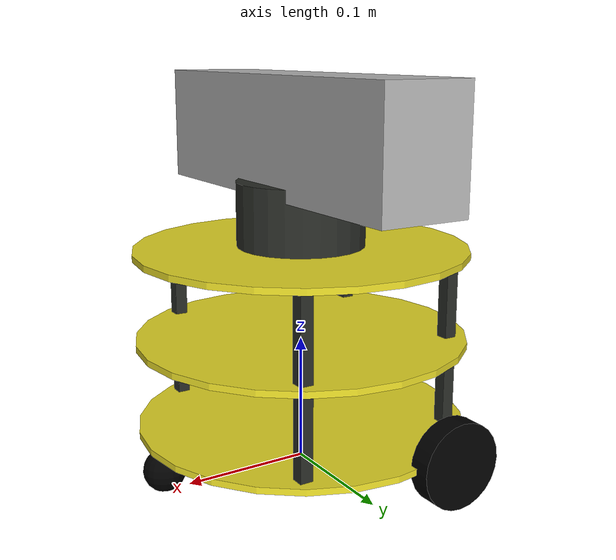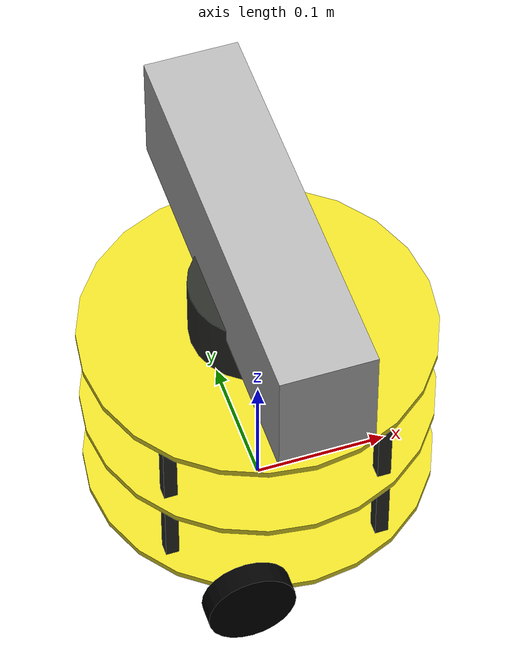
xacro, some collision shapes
<?xml version="1.0"?>

<robot name="robot" xmlns:xacro="http://www.ros.org/wiki/xacro">

	<xacro:include filename="$(find simulation)/urdf/body.urdf.xacro" />
	<xacro:include filename="$(find simulation)/urdf/kinect.xacro" />
    <xacro:include filename="$(find simulation)/urdf/rplidar.xacro" />

	<xacro:property name="kinect_offset_x" value="0" />
	<xacro:property name="kinect_offset_y" value="0" />
	<xacro:property name="kinect_offset_z" value="0.088" />
    <xacro:property name="rplidar_offset_x" value="0" />
	<xacro:property name="rplidar_offset_y" value="0" />
	<xacro:property name="rplidar_offset_z" value="0.028" />

	<!-- Body of mrobot, with plates, standoffs and Create (including sim sensors) -->
	<robot_body/>

	<!-- Attach the Kinect. -->
	<joint name="kinect_frame_joint" type="fixed">
		<origin xyz="${kinect_offset_x} ${kinect_offset_y} ${kinect_offset_z}" rpy="0 0 0" />
		<parent link="plate_2_link"/>
		<child link="camera_link"/>
	</joint>
	<xacro:kinect_camera prefix="camera"/>

    <!-- Attach the rplidar. -->
	<joint name="rplidar_joint" type="fixed">
		<origin xyz="${rplidar_offset_x} ${rplidar_offset_y} ${rplidar_offset_z}" rpy="0 0 0" />
		<parent link="plate_2_link"/>
		<child link="laser_link"/>
	</joint>
	<xacro:rplidar prefix="laser"/>

</robot>

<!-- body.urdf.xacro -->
<robot name="robot" xmlns:xacro="http://www.ros.org/wiki/xacro">

    <!-- Defining the colors used in this robot -->
    <material name="Black">
        <color rgba="0 0 0 1"/>
    </material>

    <material name="White">
        <color rgba="1 1 1 1"/>
    </material>

    <material name="Blue">
        <color rgba="0 0 1 1"/>
    </material>

    <material name="Red">
        <color rgba="1 0 0 1"/>
    </material>

    <!-- PROPERTY LIST -->
    <!--All units in m-kg-s-radians unit system -->
    <xacro:property name="M_PI" value="3.1415926535897931" />

    <!-- Main body length, width, height and mass -->
    <xacro:property name="base_mass"        value="5" />
    <xacro:property name="base_link_radius" value="0.13"/>
    <xacro:property name="base_link_length" value="0.005"/>

    <xacro:property name="motor_x" value="-0.05"/>

    <!-- Caster radius and mass -->
    <xacro:property name="caster_radius"          value="0.016" />
    <xacro:property name="caster_mass"            value="0.01" />
    <xacro:property name="caster_joint_origin_x"  value="-0.12" />

    <!-- Wheel radius, height and mass -->
    <xacro:property name="wheel_radius" value="0.033" />
    <xacro:property name="wheel_height" value="0.017" />
    <xacro:property name="wheel_mass"   value="0.1" />

    <!-- plate height and mass -->
    <xacro:property name="plate_mass"   value="0.05"/>
    <xacro:property name="plate_height" value="0.07"/>
    <xacro:property name="standoff_x"   value="0.12"/>
    <xacro:property name="standoff_y"   value="0.10"/>

    <!-- Macro for inertia matrix -->
    <xacro:macro name="sphere_inertial_matrix" params="m r">
        <inertial>
            <mass value="${m}" />
            <inertia ixx="${2*m*r*r/5}" ixy="0" ixz="0"
                iyy="${2*m*r*r/5}" iyz="0"
                izz="${2*m*r*r/5}" />
        </inertial>
    </xacro:macro>

    <xacro:macro name="cylinder_inertial_matrix" params="m r h">
        <inertial>
            <mass value="${m}" />
            <inertia ixx="${m*(3*r*r+h*h)/12}" ixy = "0" ixz = "0"
                iyy="${m*(3*r*r+h*h)/12}" iyz = "0"
                izz="${m*r*r/2}" />
        </inertial>
    </xacro:macro>

    <xacro:macro name="box_inertial_matrix" params="m w h d">
        <inertial>
            <mass value="${m}" />
            <inertia ixx="${m*(h*h+d*d)/12}" ixy = "0" ixz = "0"
                iyy="${m*(w*w+d*d)/12}" iyz = "0"
                izz="${m*(w*w+h*h)/12}" />
        </inertial>
    </xacro:macro>

    <!-- Macro for wheel joint -->
    <xacro:macro name="wheel" params="lr translateY">
        <!-- lr: left, right -->
        <link name="wheel_${lr}_link">
            <visual>
                <origin xyz="0 0 0" rpy="${M_PI/2} 0  0 " />
                <geometry>
                    <cylinder length="${wheel_height}" radius="${wheel_radius}" />
                </geometry>
                <material name="Black" />
            </visual>
            <collision>
                <origin xyz="0 0 0" rpy="${M_PI/2} 0 0 " />
                <geometry>
                    <cylinder length="${wheel_height}" radius="${wheel_radius}" />
                </geometry>
            </collision>
            <cylinder_inertial_matrix  m="${wheel_mass}" r="${wheel_radius}" h="${wheel_height}" />
        </link>

        <gazebo reference="wheel_${lr}_link">
            <material>Gazebo/Black</material>
        </gazebo>

        <joint name="base_to_wheel_${lr}_joint" type="continuous">
            <parent link="base_link"/>
            <child link="wheel_${lr}_link"/>
            <origin xyz="${motor_x} ${translateY * base_link_radius} 0" rpy="0 0 0" />
            <axis xyz="0 1 0" rpy="0  0" />
        </joint>

        <!-- Transmission is important to link the joints and the controller -->
        <transmission name="wheel_${lr}_joint_trans">
            <type>transmission_interface/SimpleTransmission</type>
            <joint name="base_to_wheel_${lr}_joint" />
            <actuator name="wheel_${lr}_joint_motor">
                <hardwareInterface>VelocityJointInterface</hardwareInterface>
                <mechanicalReduction>1</mechanicalReduction>
            </actuator>
        </transmission>
    </xacro:macro>

    <!-- Macro for caster joint -->
    <xacro:macro name="caster" params="fb translateX">
        <!-- fb: front, back -->
        <link name="${fb}_caster_link">
            <visual>
                <origin xyz="0 0 0 " rpy="0 0 0" />
                <geometry>
                    <sphere radius="${caster_radius}" />
                </geometry>
                <material name="Black" />
            </visual>
            <collision>
                <geometry>
                    <sphere radius="${caster_radius}" />
                </geometry>
                <origin xyz="0 0 0 " rpy="0 0 0" />
            </collision>
            <sphere_inertial_matrix  m="${caster_mass}" r="${caster_radius}" />
        </link>

        <gazebo reference="${fb}_caster_link">
            <material>Gazebo/Black</material>
        </gazebo>

        <joint name="base_to_${fb}_caster_joint" type="fixed">
            <parent link="base_link"/>
            <child link="${fb}_caster_link"/>
            <origin xyz="${translateX*caster_joint_origin_x} 0 ${-caster_radius}" rpy="0 0 0"/>
        </joint>
    </xacro:macro>

    <!-- Macro for plate joint -->
    <xacro:macro name="plate" params="num parent">
        <link name="plate_${num}_link">
            <cylinder_inertial_matrix  m="0.1" r="${base_link_radius}" h="${base_link_length}" />

            <visual>
                <origin xyz=" 0 0 0 " rpy="0 0 0" />
                <geometry>
                    <cylinder length="${base_link_length}" radius="${base_link_radius}"/>
                </geometry>
                <material name="yellow"/>
            </visual>

            <collision>
                <origin xyz="0.0 0.0 0.0" rpy="0 0 0" />
                <geometry>
                    <cylinder length="${base_link_length}" radius="${base_link_radius}"/>
                </geometry>
            </collision>
        </link>
        <gazebo reference="plate_${num}_link">
            <material>Gazebo/Black</material>
        </gazebo>
        <joint name="plate_${num}_joint" type="fixed">
            <origin xyz="0 0 ${plate_height}" rpy="0 0 0" />
            <parent link="${parent}"/>
            <child link="plate_${num}_link" />
        </joint>
    </xacro:macro>

    <!-- Macro for standoff joint -->
    <xacro:macro name="robot_standoff_2in" params="parent number x_loc y_loc z_loc">
        <joint name="standoff_2in_${number}_joint" type="fixed">
            <origin xyz="${x_loc} ${y_loc} ${z_loc}" rpy="0 0 0" />
            <parent link="${parent}"/>
            <child link="standoff_2in_${number}_link" />
        </joint>

        <link name="standoff_2in_${number}_link">
            <inertial>
                <mass value="0.001" />
                <origin xyz="0 0 0" />
                <inertia ixx="0.0001" ixy="0.0" ixz="0.0"
          iyy="0.0001" iyz="0.0"
          izz="0.0001" />
            </inertial>

            <visual>
                <origin xyz=" 0 0 0 " rpy="0 0 0" />
                <geometry>
                    <box size="0.01 0.01 0.07" />
                </geometry>
                <material name="black">
                    <color rgba="0.16 0.17 0.15 0.9"/>
                </material>
            </visual>

            <collision>
                <origin xyz="0.0 0.0 0.0" rpy="0 0 0" />
                <geometry>
                    <box size="0.01 0.01 0.07" />
                </geometry>
            </collision>
        </link>
    </xacro:macro>

    <!-- BASE-FOOTPRINT -->
    <!-- base_footprint is a fictitious link(frame) that is on the ground right below base_link origin -->
    <xacro:macro name="robot_body">
        <link name="base_footprint">
            <visual>
                <origin xyz="0 0 0" rpy="0 0 0" />
                <geometry>
                    <box size="0.001 0.001 0.001" />
                </geometry>
            </visual>
        </link>

        <joint name="base_footprint_joint" type="fixed">
            <origin xyz="0 0 ${wheel_radius}" rpy="0 0 0" />
            <parent link="base_footprint"/>
            <child link="base_link" />
        </joint>

        <!-- BASE-LINK -->
        <!--Actual body/chassis of the robot-->
        <link name="base_link">
            <cylinder_inertial_matrix  m="${base_mass}" r="${base_link_radius}" h="${base_link_length}" />
            <visual>
                <origin xyz=" 0 0 0" rpy="0 0 0" />
                <geometry>
                    <cylinder length="${base_link_length}" radius="${base_link_radius}"/>
                </geometry>
                <material name="yellow" />
            </visual>

            <collision>
                <origin xyz="0 0 0" rpy="0 0 0" />
                <geometry>
                    <cylinder length="${base_link_length}" radius="${base_link_radius}"/>
                </geometry>
            </collision>
        </link>
        <gazebo reference="base_link">
            <material>Gazebo/Black</material>
        </gazebo>

        <!-- Wheel Definitions -->
        <wheel lr="right"  translateY="1" />
        <wheel lr="left"  translateY="-1" />

        <!-- Casters Definitions -->
        <caster fb="front"  translateX="-1" />

        <!-- plates and standoff Definitions -->
        <robot_standoff_2in parent="base_link" number="1" x_loc="-${standoff_x/2 + 0.03}" y_loc="-${standoff_y - 0.03}" z_loc="${plate_height/2}"/>
        <robot_standoff_2in parent="base_link" number="2" x_loc="-${standoff_x/2 + 0.03}" y_loc="${standoff_y - 0.03}" z_loc="${plate_height/2}"/>
        <robot_standoff_2in parent="base_link" number="3" x_loc="${standoff_x/2}" y_loc="-${standoff_y}" z_loc="${plate_height/2}"/>
        <robot_standoff_2in parent="base_link" number="4" x_loc="${standoff_x/2}" y_loc="${standoff_y}" z_loc="${plate_height/2}"/>
        <robot_standoff_2in parent="standoff_2in_1_link" number="5" x_loc="0" y_loc="0" z_loc="${plate_height}"/>
        <robot_standoff_2in parent="standoff_2in_2_link" number="6" x_loc="0" y_loc="0" z_loc="${plate_height}"/>
        <robot_standoff_2in parent="standoff_2in_3_link" number="7" x_loc="0" y_loc="0" z_loc="${plate_height}"/>
        <robot_standoff_2in parent="standoff_2in_4_link" number="8" x_loc="0" y_loc="0" z_loc="${plate_height}"/>

        <!-- plate Definitions -->
        <plate num="1"  parent="base_link" />
        <plate num="2"  parent="plate_1_link" />

        <!-- controller -->
        <gazebo>
            <plugin name="differential_drive_controller" filename="libgazebo_ros_diff_drive.so">
                <rosDebugLevel>Debug</rosDebugLevel>
                <publishWheelTF>true</publishWheelTF>
                <robotNamespace>/</robotNamespace>
                <publishTf>1</publishTf>
                <publishWheelJointState>true</publishWheelJointState>
                <alwaysOn>true</alwaysOn>
                <updateRate>100.0</updateRate>
                <legacyMode>true</legacyMode>
                <leftJoint>base_to_wheel_left_joint</leftJoint>
                <rightJoint>base_to_wheel_right_joint</rightJoint>
                <wheelSeparation>${base_link_radius*2}</wheelSeparation>
                <wheelDiameter>${2*wheel_radius}</wheelDiameter>
                <broadcastTF>1</broadcastTF>
                <wheelTorque>30</wheelTorque>
                <wheelAcceleration>1.8</wheelAcceleration>
                <commandTopic>cmd_vel</commandTopic>
                <odometryFrame>odom</odometryFrame>
                <odometryTopic>odom</odometryTopic>
                <robotBaseFrame>base_footprint</robotBaseFrame>
            </plugin>
        </gazebo>

    </xacro:macro>
</robot>

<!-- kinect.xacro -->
<robot xmlns:xacro="http://www.ros.org/wiki/xacro" name="kinect_camera">

    <xacro:macro name="kinect_camera" params="prefix:=camera">
        <!-- Create kinect reference frame -->
        <!-- Add mesh for kinect -->
        <link name="${prefix}_link">
            <origin xyz="0 0 0" rpy="0 0 0"/>
            <visual>
                <origin xyz="0 0 0" rpy="0 0 ${M_PI/2}"/>
                <geometry>
                    <mesh filename="package://simulation/meshes/kinect.dae" />
                </geometry>
            </visual>
            <collision>
                <geometry>
                    <box size="0.07 0.3 0.09"/>
                </geometry>
            </collision>
        </link>

        <joint name="${prefix}_optical_joint" type="fixed">
            <origin xyz="0 0 0" rpy="-1.5708 0 -1.5708"/>
            <parent link="${prefix}_link"/>
            <child link="${prefix}_frame_optical"/>
        </joint>

        <link name="${prefix}_frame_optical"/>

        <gazebo reference="${prefix}_link">
            <sensor type="depth" name="${prefix}">
                <always_on>true</always_on>
                <update_rate>20.0</update_rate>
                <camera>
                    <horizontal_fov>${60.0*M_PI/180.0}</horizontal_fov>
                    <image>
                        <format>R8G8B8</format>
                        <width>640</width>
                        <height>480</height>
                    </image>
                    <clip>
                        <near>0.05</near>
                        <far>8.0</far>
                    </clip>
                </camera>
                <plugin name="kinect_${prefix}_controller" filename="libgazebo_ros_openni_kinect.so">
                    <cameraName>${prefix}</cameraName>
                    <alwaysOn>true</alwaysOn>
                    <updateRate>10</updateRate>
                    <imageTopicName>rgb/image_raw</imageTopicName>
                    <depthImageTopicName>depth/image_raw</depthImageTopicName>
                    <pointCloudTopicName>depth/points</pointCloudTopicName>
                    <cameraInfoTopicName>rgb/camera_info</cameraInfoTopicName>
                    <depthImageCameraInfoTopicName>depth/camera_info</depthImageCameraInfoTopicName>
                    <frameName>${prefix}_frame_optical</frameName>
                    <baseline>0.1</baseline>
                    <distortion_k1>0.0</distortion_k1>
                    <distortion_k2>0.0</distortion_k2>
                    <distortion_k3>0.0</distortion_k3>
                    <distortion_t1>0.0</distortion_t1>
                    <distortion_t2>0.0</distortion_t2>
                    <pointCloudCutoff>0.4</pointCloudCutoff>
                </plugin>
            </sensor>
        </gazebo>

    </xacro:macro>
</robot>

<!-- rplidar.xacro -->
<robot xmlns:xacro="http://www.ros.org/wiki/xacro" name="laser">

    <xacro:macro name="rplidar" params="prefix:=laser">
        <!-- Create laser reference frame -->
        <link name="${prefix}_link">
            <inertial>
                <mass value="0.1" />
                <origin xyz="0 0 0" />
                <inertia ixx="0.01" ixy="0.0" ixz="0.0"
                         iyy="0.01" iyz="0.0"
                         izz="0.01" />
            </inertial>

            <visual>
                <origin xyz=" 0 0 0 " rpy="0 0 0" />
                <geometry>
                    <cylinder length="0.05" radius="0.05"/>
                </geometry>
                <material name="black"/>
            </visual>

            <collision>
                <origin xyz="0.0 0.0 0.0" rpy="0 0 0" />
                <geometry>
                    <cylinder length="0.06" radius="0.05"/>
                </geometry>
            </collision>
        </link>
        <gazebo reference="${prefix}_link">
            <material>Gazebo/White</material>
        </gazebo>

        <gazebo reference="${prefix}_link">
            <sensor type="ray" name="rplidar">
                <pose>0 0 0 0 0 0</pose>
                <visualize>false</visualize>
                <update_rate>60</update_rate>
                <ray>
                    <scan>
                      <horizontal>
                        <samples>2000</samples>
                        <resolution>1</resolution>
                        <min_angle>-3.14159</min_angle>
                        <max_angle>3.14159</max_angle>
                      </horizontal>
                    </scan>
                    <range>
                      <min>0.1</min>
                      <max>3.0</max>
                      <resolution>0.01</resolution>
                    </range>
                    <noise>
                      <type>gaussian</type>
                      <mean>0.0</mean>
                      <stddev>0.01</stddev>
                    </noise>
                </ray>
                <plugin name="gazebo_rplidar" filename="libgazebo_ros_laser.so">
                    <topicName>/scan</topicName>
                    <frameName>laser_link</frameName>
                </plugin>
            </sensor>
        </gazebo>

    </xacro:macro>
</robot>
